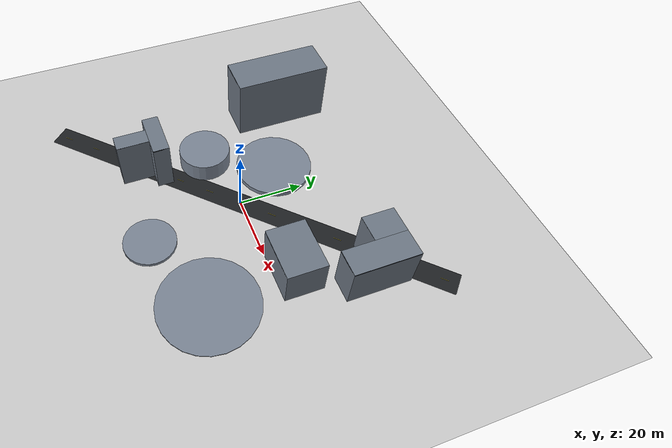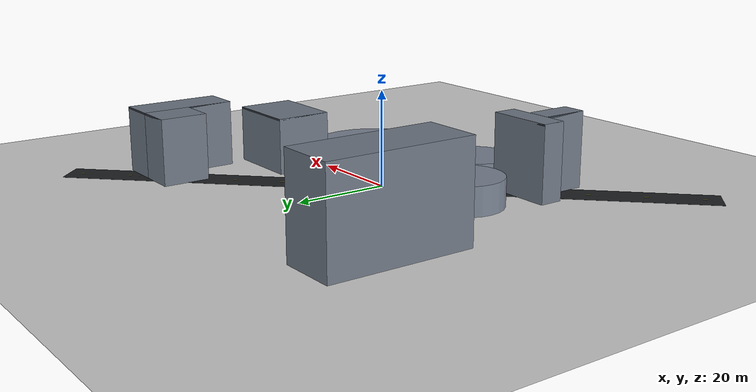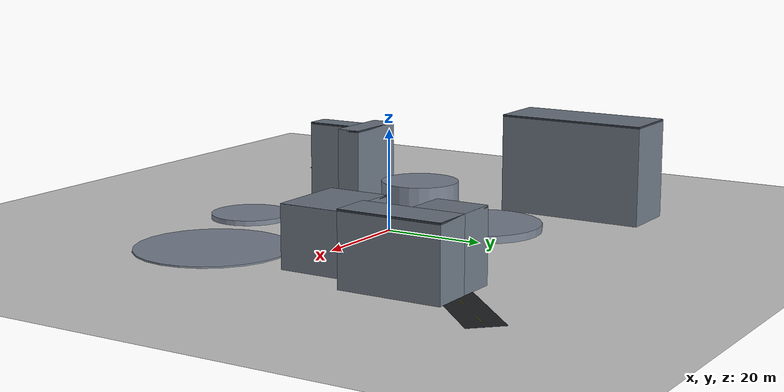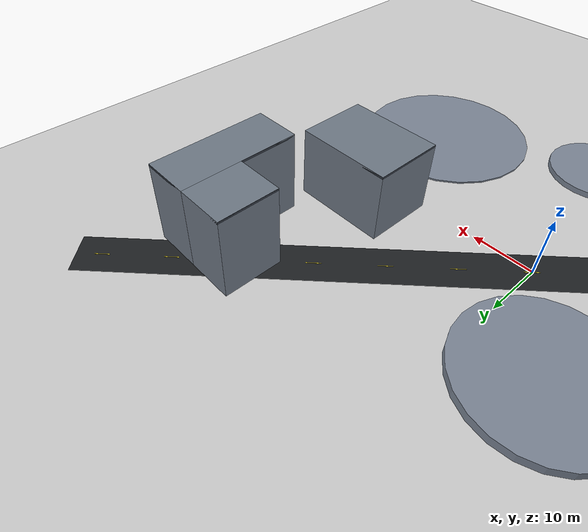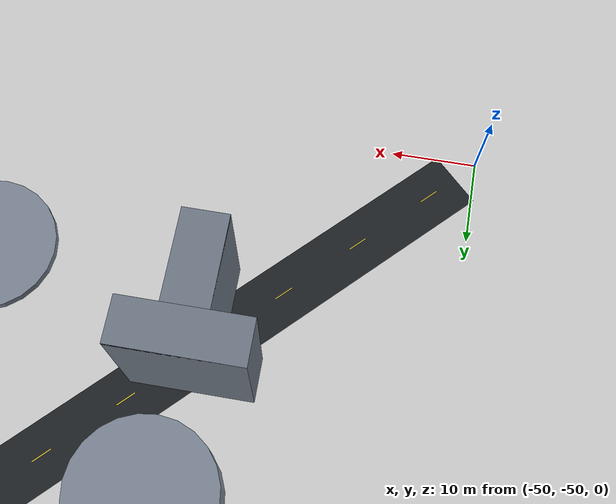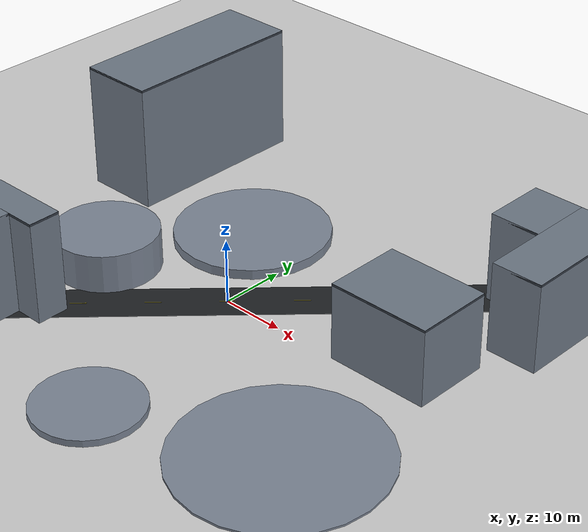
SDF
<?xml version="1.0"?>
<sdf version="1.6"><world name="logistics_4_urban_park_emergency">
  <physics name="default_physics" type="ode"><max_step_size>0.004</max_step_size><real_time_factor>1</real_time_factor><real_time_update_rate>250</real_time_update_rate><magnetic_field>6.0e-6 2.3e-5 -4.2e-5</magnetic_field></physics>
  <gravity>0 0 -9.8066</gravity>
  <include><uri>model://sun</uri></include>
  <include><uri>model://ground_plane</uri></include>
  <spherical_coordinates><surface_model>EARTH_WGS84</surface_model><latitude_deg>47.397742</latitude_deg><longitude_deg>8.545594</longitude_deg><elevation>488</elevation><heading_deg>0</heading_deg></spherical_coordinates>
<model name="service_road"><static>true</static><pose>0.000 0.000 0.012 0.000 0.000 0.785</pose><link name="link"><visual name="visual"><cast_shadows>false</cast_shadows><geometry><box><size>135.279 7.0 0.02</size></box></geometry><material><ambient>0.12 0.13 0.14 1</ambient><diffuse>0.12 0.13 0.14 1</diffuse></material></visual></link></model>
<model name="road_mark_00"><static>true</static><pose>-45.000 -45.000 0.026 0.000 0.000 0.785</pose><link name="link"><visual name="visual"><cast_shadows>false</cast_shadows><geometry><box><size>2.4 0.12 0.012</size></box></geometry><material><ambient>0.92 0.84 0.18 1</ambient><diffuse>0.92 0.84 0.18 1</diffuse></material></visual></link></model>
<model name="road_mark_01"><static>true</static><pose>-37.500 -37.500 0.026 0.000 0.000 0.785</pose><link name="link"><visual name="visual"><cast_shadows>false</cast_shadows><geometry><box><size>2.4 0.12 0.012</size></box></geometry><material><ambient>0.92 0.84 0.18 1</ambient><diffuse>0.92 0.84 0.18 1</diffuse></material></visual></link></model>
<model name="road_mark_02"><static>true</static><pose>-30.000 -30.000 0.026 0.000 0.000 0.785</pose><link name="link"><visual name="visual"><cast_shadows>false</cast_shadows><geometry><box><size>2.4 0.12 0.012</size></box></geometry><material><ambient>0.92 0.84 0.18 1</ambient><diffuse>0.92 0.84 0.18 1</diffuse></material></visual></link></model>
<model name="road_mark_03"><static>true</static><pose>-22.500 -22.500 0.026 0.000 0.000 0.785</pose><link name="link"><visual name="visual"><cast_shadows>false</cast_shadows><geometry><box><size>2.4 0.12 0.012</size></box></geometry><material><ambient>0.92 0.84 0.18 1</ambient><diffuse>0.92 0.84 0.18 1</diffuse></material></visual></link></model>
<model name="road_mark_04"><static>true</static><pose>-15.000 -15.000 0.026 0.000 0.000 0.785</pose><link name="link"><visual name="visual"><cast_shadows>false</cast_shadows><geometry><box><size>2.4 0.12 0.012</size></box></geometry><material><ambient>0.92 0.84 0.18 1</ambient><diffuse>0.92 0.84 0.18 1</diffuse></material></visual></link></model>
<model name="road_mark_05"><static>true</static><pose>-7.500 -7.500 0.026 0.000 0.000 0.785</pose><link name="link"><visual name="visual"><cast_shadows>false</cast_shadows><geometry><box><size>2.4 0.12 0.012</size></box></geometry><material><ambient>0.92 0.84 0.18 1</ambient><diffuse>0.92 0.84 0.18 1</diffuse></material></visual></link></model>
<model name="road_mark_06"><static>true</static><pose>0.000 0.000 0.026 0.000 0.000 0.785</pose><link name="link"><visual name="visual"><cast_shadows>false</cast_shadows><geometry><box><size>2.4 0.12 0.012</size></box></geometry><material><ambient>0.92 0.84 0.18 1</ambient><diffuse>0.92 0.84 0.18 1</diffuse></material></visual></link></model>
<model name="road_mark_07"><static>true</static><pose>7.500 7.500 0.026 0.000 0.000 0.785</pose><link name="link"><visual name="visual"><cast_shadows>false</cast_shadows><geometry><box><size>2.4 0.12 0.012</size></box></geometry><material><ambient>0.92 0.84 0.18 1</ambient><diffuse>0.92 0.84 0.18 1</diffuse></material></visual></link></model>
<model name="road_mark_08"><static>true</static><pose>15.000 15.000 0.026 0.000 0.000 0.785</pose><link name="link"><visual name="visual"><cast_shadows>false</cast_shadows><geometry><box><size>2.4 0.12 0.012</size></box></geometry><material><ambient>0.92 0.84 0.18 1</ambient><diffuse>0.92 0.84 0.18 1</diffuse></material></visual></link></model>
<model name="road_mark_09"><static>true</static><pose>22.500 22.500 0.026 0.000 0.000 0.785</pose><link name="link"><visual name="visual"><cast_shadows>false</cast_shadows><geometry><box><size>2.4 0.12 0.012</size></box></geometry><material><ambient>0.92 0.84 0.18 1</ambient><diffuse>0.92 0.84 0.18 1</diffuse></material></visual></link></model>
<model name="road_mark_10"><static>true</static><pose>30.000 30.000 0.026 0.000 0.000 0.785</pose><link name="link"><visual name="visual"><cast_shadows>false</cast_shadows><geometry><box><size>2.4 0.12 0.012</size></box></geometry><material><ambient>0.92 0.84 0.18 1</ambient><diffuse>0.92 0.84 0.18 1</diffuse></material></visual></link></model>
<model name="road_mark_11"><static>true</static><pose>37.500 37.500 0.026 0.000 0.000 0.785</pose><link name="link"><visual name="visual"><cast_shadows>false</cast_shadows><geometry><box><size>2.4 0.12 0.012</size></box></geometry><material><ambient>0.92 0.84 0.18 1</ambient><diffuse>0.92 0.84 0.18 1</diffuse></material></visual></link></model>
<model name="road_mark_12"><static>true</static><pose>45.000 45.000 0.026 0.000 0.000 0.785</pose><link name="link"><visual name="visual"><cast_shadows>false</cast_shadows><geometry><box><size>2.4 0.12 0.012</size></box></geometry><material><ambient>0.92 0.84 0.18 1</ambient><diffuse>0.92 0.84 0.18 1</diffuse></material></visual></link></model>
<model name="obstacle_00_library_part_0"><static>true</static><pose>-22.000 -27.000 8.000 0 0 0</pose><link name="link"><collision name="collision"><geometry><box><size>5.000 10.000 16.000</size></box></geometry></collision><visual name="visual"><geometry><box><size>5.000 10.000 16.000</size></box></geometry><material><ambient>0.43 0.47 0.52 1</ambient><diffuse>0.43 0.47 0.52 1</diffuse></material></visual></link></model>
<model name="obstacle_00_library_part_0_roof"><static>true</static><pose>-22.000 -27.000 15.820 0.000 0.000 0.000</pose><link name="link"><visual name="visual"><cast_shadows>false</cast_shadows><geometry><box><size>5.000 10.000 0.360</size></box></geometry><material><ambient>0.20 0.23 0.27 1</ambient><diffuse>0.20 0.23 0.27 1</diffuse></material></visual></link></model>
<model name="obstacle_00_library_part_1"><static>true</static><pose>-22.000 -19.500 8.000 0 0 0</pose><link name="link"><collision name="collision"><geometry><box><size>14.000 5.000 16.000</size></box></geometry></collision><visual name="visual"><geometry><box><size>14.000 5.000 16.000</size></box></geometry><material><ambient>0.43 0.47 0.52 1</ambient><diffuse>0.43 0.47 0.52 1</diffuse></material></visual></link></model>
<model name="obstacle_00_library_part_1_roof"><static>true</static><pose>-22.000 -19.500 15.820 0.000 0.000 0.000</pose><link name="link"><visual name="visual"><cast_shadows>false</cast_shadows><geometry><box><size>14.000 5.000 0.360</size></box></geometry><material><ambient>0.20 0.23 0.27 1</ambient><diffuse>0.20 0.23 0.27 1</diffuse></material></visual></link></model>
<model name="obstacle_01_gallery_part_0"><static>true</static><pose>38.000 26.000 7.000 0 0 0</pose><link name="link"><collision name="collision"><geometry><box><size>8.000 20.000 14.000</size></box></geometry></collision><visual name="visual"><geometry><box><size>8.000 20.000 14.000</size></box></geometry><material><ambient>0.43 0.47 0.52 1</ambient><diffuse>0.43 0.47 0.52 1</diffuse></material></visual></link></model>
<model name="obstacle_01_gallery_part_0_roof"><static>true</static><pose>38.000 26.000 13.820 0.000 0.000 0.000</pose><link name="link"><visual name="visual"><cast_shadows>false</cast_shadows><geometry><box><size>8.000 20.000 0.360</size></box></geometry><material><ambient>0.20 0.23 0.27 1</ambient><diffuse>0.20 0.23 0.27 1</diffuse></material></visual></link></model>
<model name="obstacle_01_gallery_part_1"><static>true</static><pose>30.000 31.000 7.000 0 0 0</pose><link name="link"><collision name="collision"><geometry><box><size>8.000 10.000 14.000</size></box></geometry></collision><visual name="visual"><geometry><box><size>8.000 10.000 14.000</size></box></geometry><material><ambient>0.43 0.47 0.52 1</ambient><diffuse>0.43 0.47 0.52 1</diffuse></material></visual></link></model>
<model name="obstacle_01_gallery_part_1_roof"><static>true</static><pose>30.000 31.000 13.820 0.000 0.000 0.000</pose><link name="link"><visual name="visual"><cast_shadows>false</cast_shadows><geometry><box><size>8.000 10.000 0.360</size></box></geometry><material><ambient>0.20 0.23 0.27 1</ambient><diffuse>0.20 0.23 0.27 1</diffuse></material></visual></link></model>
<model name="obstacle_02_flower_bed"><static>true</static><pose>5.000 -30.000 0.500 0 0 0</pose><link name="link"><collision name="collision"><geometry><cylinder><radius>8.000</radius><length>1.000</length></cylinder></geometry></collision><visual name="visual"><geometry><cylinder><radius>8.000</radius><length>1.000</length></cylinder></geometry><material><ambient>0.48 0.52 0.58 1</ambient><diffuse>0.48 0.52 0.58 1</diffuse></material></visual></link></model>
<model name="obstacle_03_fountain"><static>true</static><pose>-10.000 15.000 0.750 0 0 0</pose><link name="link"><collision name="collision"><geometry><cylinder><radius>12.000</radius><length>1.500</length></cylinder></geometry></collision><visual name="visual"><geometry><cylinder><radius>12.000</radius><length>1.500</length></cylinder></geometry><material><ambient>0.48 0.52 0.58 1</ambient><diffuse>0.48 0.52 0.58 1</diffuse></material></visual></link></model>
<model name="obstacle_04_exhibition_hall"><static>true</static><pose>28.000 6.000 6.000 0 0 0</pose><link name="link"><collision name="collision"><geometry><box><size>16.000 12.000 12.000</size></box></geometry></collision><visual name="visual"><geometry><box><size>16.000 12.000 12.000</size></box></geometry><material><ambient>0.43 0.47 0.52 1</ambient><diffuse>0.43 0.47 0.52 1</diffuse></material></visual></link></model>
<model name="obstacle_04_exhibition_hall_roof"><static>true</static><pose>28.000 6.000 11.820 0.000 0.000 0.000</pose><link name="link"><visual name="visual"><cast_shadows>false</cast_shadows><geometry><box><size>16.000 12.000 0.360</size></box></geometry><material><ambient>0.20 0.23 0.27 1</ambient><diffuse>0.20 0.23 0.27 1</diffuse></material></visual></link></model>
<model name="obstacle_05_sculpture"><static>true</static><pose>-20.000 -5.000 3.000 0 0 0</pose><link name="link"><collision name="collision"><geometry><cylinder><radius>8.000</radius><length>6.000</length></cylinder></geometry></collision><visual name="visual"><geometry><cylinder><radius>8.000</radius><length>6.000</length></cylinder></geometry><material><ambient>0.48 0.52 0.58 1</ambient><diffuse>0.48 0.52 0.58 1</diffuse></material></visual></link></model>
<model name="obstacle_06_office"><static>true</static><pose>-34.000 25.000 10.000 0 0 0</pose><link name="link"><collision name="collision"><geometry><box><size>12.000 30.000 20.000</size></box></geometry></collision><visual name="visual"><geometry><box><size>12.000 30.000 20.000</size></box></geometry><material><ambient>0.43 0.47 0.52 1</ambient><diffuse>0.43 0.47 0.52 1</diffuse></material></visual></link></model>
<model name="obstacle_06_office_roof"><static>true</static><pose>-34.000 25.000 19.820 0.000 0.000 0.000</pose><link name="link"><visual name="visual"><cast_shadows>false</cast_shadows><geometry><box><size>12.000 30.000 0.360</size></box></geometry><material><ambient>0.20 0.23 0.27 1</ambient><diffuse>0.20 0.23 0.27 1</diffuse></material></visual></link></model>
<model name="obstacle_07_lake"><static>true</static><pose>30.000 -20.000 0.150 0 0 0</pose><link name="link"><collision name="collision"><geometry><cylinder><radius>15.000</radius><length>0.300</length></cylinder></geometry></collision><visual name="visual"><geometry><cylinder><radius>15.000</radius><length>0.300</length></cylinder></geometry><material><ambient>0.48 0.52 0.58 1</ambient><diffuse>0.48 0.52 0.58 1</diffuse></material></visual></link></model>
<model name="start_zone"><static>true</static><pose>-45.000 -45.000 -0.009 0 0 0</pose><link name="link"><visual name="visual"><cast_shadows>false</cast_shadows><geometry><cylinder><radius>1.5</radius><length>0.02</length></cylinder></geometry><material><ambient>0.1 0.8 0.1 1</ambient><diffuse>0.1 0.8 0.1 1</diffuse></material></visual></link></model>
<model name="goal_zone"><static>true</static><pose>45.000 45.000 -0.009 0 0 0</pose><link name="link"><visual name="visual"><cast_shadows>false</cast_shadows><geometry><cylinder><radius>1.5</radius><length>0.02</length></cylinder></geometry><material><ambient>0.9 0.15 0.1 1</ambient><diffuse>0.9 0.15 0.1 1</diffuse></material></visual></link></model>
</world></sdf>
